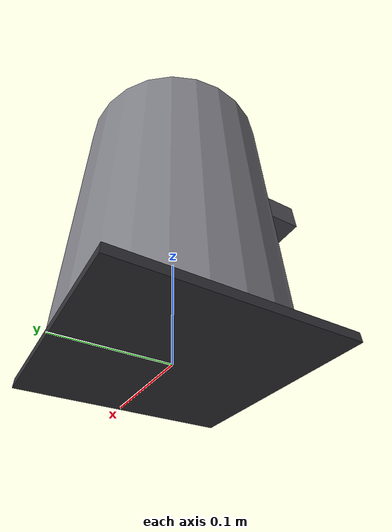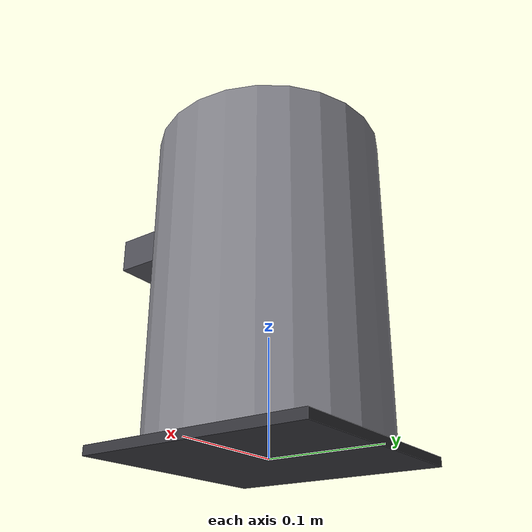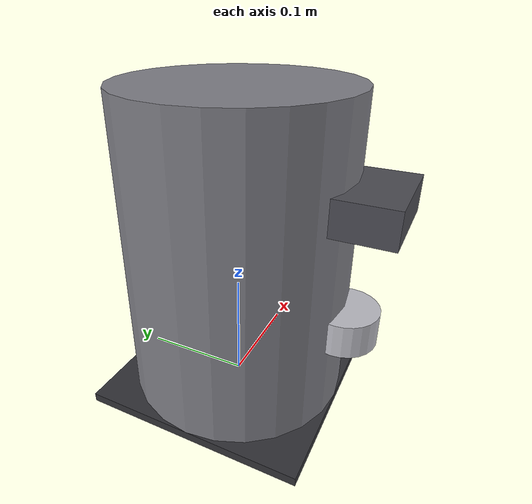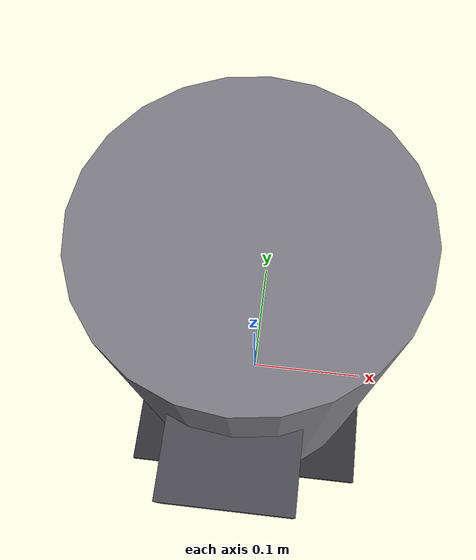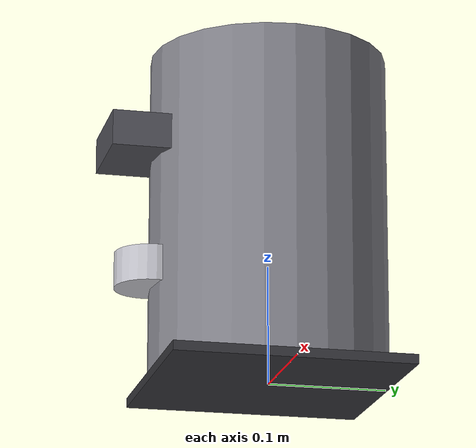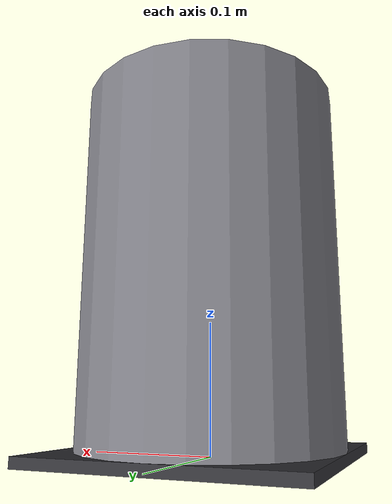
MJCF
<?xml version="1.0" encoding="utf-8"?>
<mujoco model="real_lab_king_saud_gammacell">
  <compiler angle="radian" autolimits="true"/>
  <default>
    <default class="body"><geom contype="1" conaffinity="1"/></default>
  </default>
  <worldbody>
    <body name="base">
      <geom type="cylinder" size="0.1 0.14" pos="0 0 0.14" rgba="0.5 0.5 0.53 1" class="body"/>
      <geom type="box" size="0.1 0.1 0.004" pos="0 0 0.002" rgba="0.2 0.2 0.22 1" class="body"/>
      <geom type="box" size="0.04 0.03 0.015" pos="0.0 -0.11 0.2" rgba="0.3 0.3 0.33 1" class="body"/>
      <body name="sample_drawer" pos="0.0 -0.1 0.09">
        <joint name="sample_drawer_joint" type="slide" axis="0 1 0" range="0 0.12" damping="1.2" frictionloss="0.5"/>
  <geom type="cylinder" size="0.03 0.015" pos="0 0 0" rgba="0.75 0.75 0.78 1" class="body"/>
      </body>
    </body>
  </worldbody>
</mujoco>
